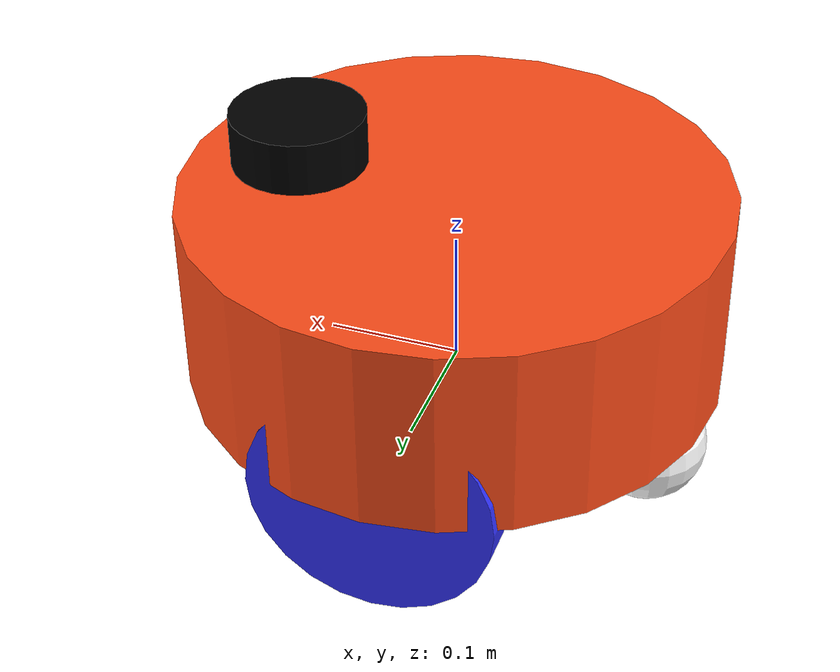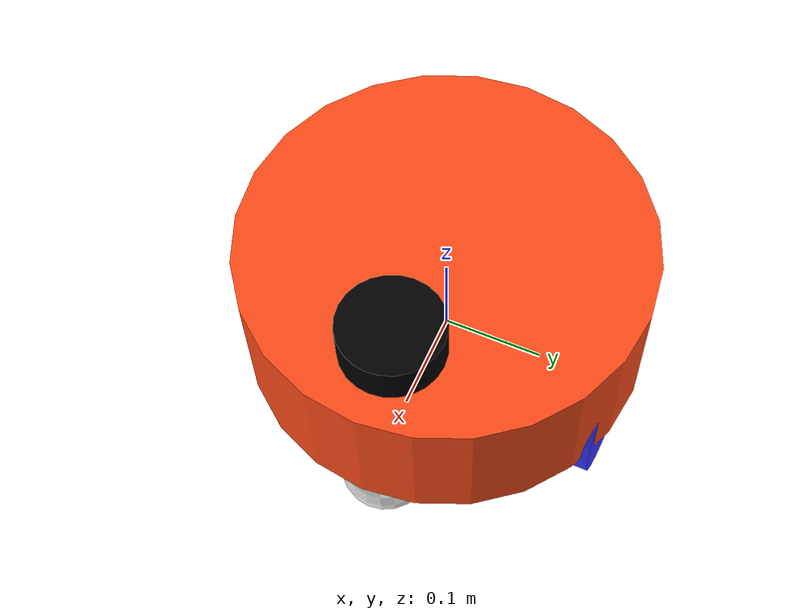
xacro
<?xml version="1.0"?>
<robot xmlns:xacro="http://www.ros.org/wiki/xacro"  name="robott">

    <xacro:arg name="use_ros2_control" default="true"/>
    <xacro:arg name="sim_mode" default="false"/>

    <xacro:include filename="robot_core.xacro" />

    <xacro:if value="$(arg use_ros2_control)">
        <xacro:include filename="ros2_control.xacro" />
    </xacro:if>
    <xacro:unless value="$(arg use_ros2_control)">
        <xacro:include filename="gazebo_control.xacro" />
    </xacro:unless>
    <xacro:include filename="lidar.xacro" />

</robot>

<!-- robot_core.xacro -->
<robot xmlns:xacro="http://www.ros.org/wiki/xacro" >

    <xacro:include filename="inertial_macros.xacro"/>

    <xacro:property name="chassis_height" value="0.145"/>
    <xacro:property name="wheel_offset_y" value="0.165"/>

    <xacro:property name="wheel_radius" value="0.09"/>
    <xacro:property name="wheel_thickness" value="0.04"/>
    <xacro:property name="wheel_mass" value="0.8"/>

    <xacro:property name="caster_wheel_offset_x" value="0.15"/>
    <xacro:property name="caster_wheel_radius" value="0.045"/>
    <xacro:property name="caster_wheel_mass" value="0.2"/>
    <xacro:property name="caster_wheel_offset_z" value="-${caster_wheel_radius}"/>

    <material name="white">
        <color rgba="1 1 1 1" />
    </material>

    <material name="orange">
        <color rgba="1 0.3 0.1 1"/>
    </material>

    <material name="blue">
        <color rgba="0.2 0.2 1 1"/>
    </material>

    <material name="black">
        <color rgba="0 0 0 1"/>
    </material>

    <material name="red">
        <color rgba="1 0 0 1"/>
    </material>

    <!-- BASE LINK -->

    <link name="base_link">

    </link>

    <!-- BASE_FOOTPRINT LINK -->

    <joint name="base_footprint_joint" type="fixed">
        <parent link="base_link"/>
        <child link="base_footprint"/>
        <origin xyz="0 0 0" rpy="0 0 0"/>
    </joint>

    <link name="base_footprint">
    </link>

    <!-- CHASSIS LINK -->

    <joint name="chassis_joint" type="fixed">
        <parent link="base_link"/>
        <child link="chassis"/>
        <origin xyz="0 0 0"/>
    </joint>

    <link name="chassis">
        <visual>
            <origin xyz="0 0 ${chassis_height/2}"/>
            <geometry>
                <cylinder radius="0.2" length="0.145"/>
            </geometry>
            <material name="orange"/>
        </visual>
        <collision>
            <origin xyz="0 0 ${chassis_height/2}"/>
            <geometry>
                <cylinder radius="0.1" length="0.145"/>
            </geometry>
        </collision>
        <xacro:inertial_cylinder mass="3" length="${chassis_height}" radius="0.2">
            <origin xyz="0 0 0" rpy="0 0 0"/>
        </xacro:inertial_cylinder>
    </link>

    <gazebo reference="chassis">
        <material>Gazebo/Orange</material>
    </gazebo>

    <!-- LEFT WHEEL LINK -->

    <joint name="left_wheel_joint" type="continuous">
        <parent link="base_link"/>
        <child link="left_wheel"/>
        <origin xyz="0 ${wheel_offset_y} 0" rpy="-${pi/2} 0 0" />
        <axis xyz="0 0 1"/>
    </joint>

    <link name="left_wheel">
        <visual>
            <geometry>
                <cylinder radius="${wheel_radius}" length="${wheel_thickness}"/>
            </geometry>
            <material name="blue"/>
        </visual>
        <collision>
            <geometry>
                <sphere radius="${wheel_radius}"/>
            </geometry>
        </collision>
        <xacro:inertial_cylinder mass="${wheel_mass}" length="${wheel_thickness}" radius="${wheel_radius}">
            <origin xyz="0 0 0" rpy="0 0 0"/>
        </xacro:inertial_cylinder>
    </link>

    <gazebo reference="left_wheel">
        <material>Gazebo/Blue</material>
    </gazebo>

    <!-- RIGHT WHEEL LINK -->

    <joint name="right_wheel_joint" type="continuous">
        <parent link="base_link"/>
        <child link="right_wheel"/>
        <origin xyz="0 ${-wheel_offset_y} 0" rpy="${pi/2} 0 0" />
        <axis xyz="0 0 -1"/>
    </joint>

    <link name="right_wheel">
        <visual>
            <geometry>
                <cylinder radius="${wheel_radius}" length="${wheel_thickness}"/>
            </geometry>
            <material name="blue"/>
        </visual>
        <collision>
            <geometry>
                <sphere radius="${wheel_radius}"/>
            </geometry>
        </collision>
        <xacro:inertial_cylinder mass="${wheel_mass}" length="${wheel_thickness}" radius="${wheel_radius}">
            <origin xyz="0 0 0" rpy="0 0 0"/>
        </xacro:inertial_cylinder>
    </link>

    <gazebo reference="right_wheel">
        <material>Gazebo/Blue</material>
    </gazebo>

    <!-- FRont CASTER WHEEL LINK -->

    <joint name="front_caster_wheel_joint" type="fixed">
        <parent link="chassis"/>
        <child link="front_caster_wheel"/>
        <origin xyz="${caster_wheel_offset_x} 0 ${caster_wheel_offset_z}"/>
    </joint>

    <link name="front_caster_wheel">
        <visual>
            <geometry>
                <sphere radius="${caster_wheel_radius}"/>
            </geometry>
            <material name="white"/>
        </visual>
        <collision>
            <geometry>
                <sphere radius="${caster_wheel_radius}"/>
            </geometry>
        </collision>
        <xacro:inertial_sphere mass="${caster_wheel_mass}" radius="${caster_wheel_radius}">
            <origin xyz="0 0 0" rpy="0 0 0"/>
        </xacro:inertial_sphere>
    </link>

    <gazebo reference="front_caster_wheel">
        <material>Gazebo/White</material>
        <mu1 value="0.001"/>
        <mu2 value="0.001"/>
    </gazebo>

    <!-- back CASTER WHEEL LINK -->

    <joint name="back_caster_wheel_joint" type="fixed">
        <parent link="chassis"/>
        <child link="back_caster_wheel"/>
        <origin xyz="-${caster_wheel_offset_x} 0 ${caster_wheel_offset_z}"/>
    </joint>

    <link name="back_caster_wheel">
        <visual>
            <geometry>
                <sphere radius="${caster_wheel_radius}"/>
            </geometry>
            <material name="white"/>
        </visual>
        <collision>
            <geometry>
                <sphere radius="${caster_wheel_radius}"/>
            </geometry>
        </collision>
        <xacro:inertial_sphere mass="${caster_wheel_mass}" radius="${caster_wheel_radius}">
            <origin xyz="0 0 0" rpy="0 0 0"/>
        </xacro:inertial_sphere>
    </link>

    <gazebo reference="back_caster_wheel">
        <material>Gazebo/White</material>
        <mu1 value="0.001"/>
        <mu2 value="0.001"/>
    </gazebo>

</robot>

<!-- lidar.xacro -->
<robot xmlns:xacro="http://www.ros.org/wiki/xacro" >

    <joint name="laser_joint" type="fixed">
        <parent link="chassis"/>
        <child link="laser_frame"/>
        <origin xyz="${0.2-0.025-0.055} 0 ${0.145+0.02}" rpy="0 0 0"/>
    </joint>

    <link name="laser_frame">
        <visual>
            <geometry>
                <cylinder radius="0.05" length="0.04"/>
            </geometry>
            <material name="black"/>
        </visual>
        <collision>
            <geometry>
                <cylinder radius="0.05" length="0.04"/>
            </geometry>
        </collision>
        <xacro:inertial_cylinder mass="0.1" length="0.04" radius="0.05">
            <origin xyz="0 0 0" rpy="0 0 0"/>
        </xacro:inertial_cylinder>
    </link>

    <gazebo reference="laser_frame">
        <material>Gazebo/Black</material>

        <sensor name="laser" type="ray">
            <pose> 0 0 0 0 0 0 </pose>
            <visualize>false</visualize>
            <update_rate>10</update_rate>
            <ray>
                <scan>
                    <horizontal>
                        <samples>360</samples>
                        <min_angle>-3.14</min_angle>
                        <max_angle>3.14</max_angle>
                    </horizontal>
                </scan>
                <range>
                    <min>0.3</min>
                    <max>12</max>
                </range>
            </ray>
            <plugin name="laser_controller" filename="libgazebo_ros_ray_sensor.so">
                <ros>
                    <argument>~/out:=scan</argument>
                </ros>
                <output_type>sensor_msgs/LaserScan</output_type>
                <frame_name>laser_frame</frame_name>
            </plugin>
        </sensor>
    </gazebo>

</robot>
